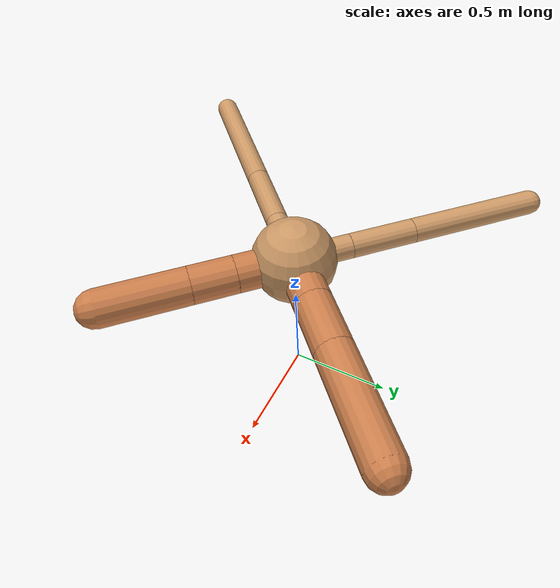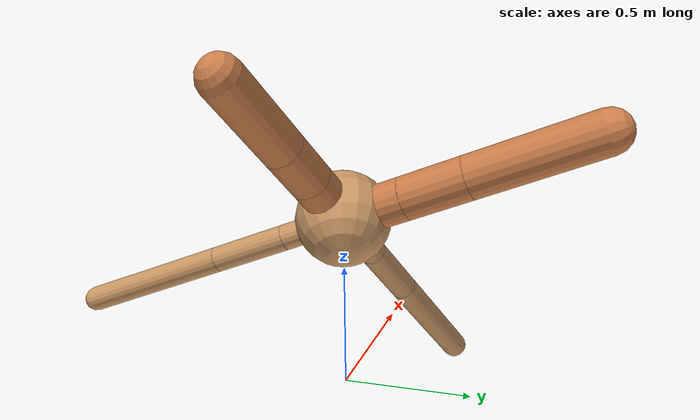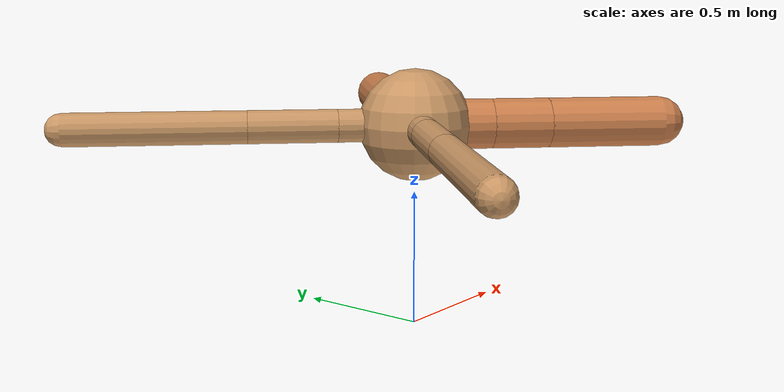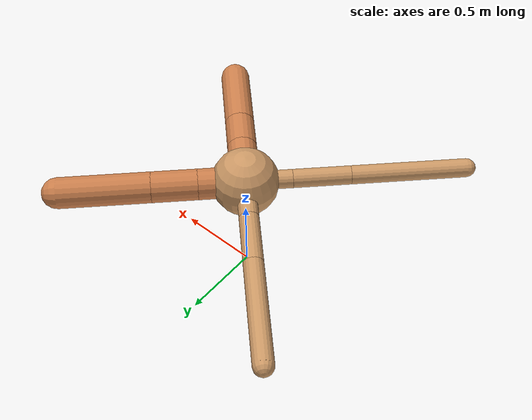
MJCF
<?xml version="1.0" ?>
<mujoco model="ant">

	<compiler angle="degree" coordinate="local" inertiafromgeom="true"/>

	<option integrator="RK4" timestep="0.01"/>

	<custom>

		<numeric data="0.0 0.0 0.55 1.0 0.0 0.0 0.0 0.0 1.0 0.0 -1.0 0.0 -1.0 0.0 1.0" name="init_qpos"/>

	</custom>

	<default>

		<joint armature="1" damping="1" limited="true"/>

		<geom conaffinity="0" condim="3" density="5.0" friction="1.5 0.1 0.1" margin="0.01" rgba="0.8 0.6 0.4 1"/>

	</default>

	<worldbody>

		<body name="torso" pos="0 0 0.75">

			<geom name="torso_geom" pos="0 0 0" size="0.20539846198013204" type="sphere"/>

			<!--joint armature="0" damping="0" limited="false" margin="0.01" name="root" pos="0 0 0" type="free"/-->

			<body name="front_left_leg" pos="0 0 0">

				<geom fromto="0 0 0 0.2 0.2 0" name="aux_1_geom" size="0.0938279303173349" type="capsule" rgba=".8 .5 .3 1"/>

				<body name="aux_1" pos="0.2 0.2 0">

					<joint axis="0 0 1" name="hip_1" pos="0.0 0.0 0.0" range="-40 40" type="hinge"/>

					<geom fromto="0 0 0 0.1961961524567722 0.1961961524567722 0" name="left_leg_geom" size="0.0938279303173349" type="capsule" rgba=".8 .5 .3 1"/>

					<body pos="0.1961961524567722 0.1961961524567722 0" name="front_left_foot">

						<joint axis="-1 1 0" name="ankle_1" pos="0.0 0.0 0.0" range="30 100" type="hinge"/>

						<geom fromto="0 0 0 0.3923923049135444 0.3923923049135444 0" name="left_ankle_geom" size="0.0938279303173349" type="capsule" rgba=".8 .5 .3 1"/>

					</body>

				</body>

			</body>

			<body name="front_right_leg" pos="0 0 0">

				<geom fromto="0 0 0 -0.2 0.2 0" name="aux_2_geom" size="0.06037853630313514" type="capsule"/>

				<body name="aux_2" pos="-0.2 0.2 0">

					<joint axis="0 0 1" name="hip_2" pos="0.0 0.0 0.0" range="-40 40" type="hinge"/>

					<geom fromto="0 0 0 -0.22965506006499387 0.22965506006499387 0" name="right_leg_geom" size="0.06037853630313514" type="capsule"/>

					<body pos="-0.22965506006499387 0.22965506006499387 0" name="front_right_foot">

						<joint axis="1 1 0" name="ankle_2" pos="0.0 0.0 0.0" range="-100 -30" type="hinge"/>

						<geom fromto="0 0 0 -0.45931012012998773 0.45931012012998773 0" name="right_ankle_geom" size="0.06037853630313514" type="capsule"/>

					</body>

				</body>

			</body>

			<body name="left_back_leg" pos="0 0 0">

				<geom fromto="0 0 0 -0.2 -0.2 0" name="aux_3_geom" size="0.0566346341686063" type="capsule"/>

				<body name="aux_3" pos="-0.2 -0.2 0">

					<joint axis="0 0 1" name="hip_3" pos="0.0 0.0 0.0" range="-40 40" type="hinge"/>

					<geom fromto="0 0 0 -0.2488248608549431 -0.2488248608549431 0" name="back_leg_geom" size="0.0566346341686063" type="capsule"/>

					<body pos="-0.2488248608549431 -0.2488248608549431 0" name="left_back_foot">

						<joint axis="-1 1 0" name="ankle_3" pos="0.0 0.0 0.0" range="-100 -30" type="hinge"/>

						<geom fromto="0 0 0 -0.4976497217098862 -0.4976497217098862 0" name="third_ankle_geom" size="0.0566346341686063" type="capsule"/>

					</body>

				</body>

			</body>

			<body name="right_back_leg" pos="0 0 0">

				<geom fromto="0 0 0 0.2 -0.2 0" name="aux_4_geom" size="0.09156697557416328" type="capsule" rgba=".8 .5 .3 1"/>

				<body name="aux_4" pos="0.2 -0.2 0">

					<joint axis="0 0 1" name="hip_4" pos="0.0 0.0 0.0" range="-40 40" type="hinge"/>

					<geom fromto="0 0 0 0.14984704192233764 -0.14984704192233764 0" name="rightback_leg_geom" size="0.09156697557416328" type="capsule" rgba=".8 .5 .3 1"/>

					<body pos="0.14984704192233764 -0.14984704192233764 0" name="right_back_foot">

						<joint axis="1 1 0" name="ankle_4" pos="0.0 0.0 0.0" range="30 100" type="hinge"/>

						<geom fromto="0 0 0 0.2996940838446753 -0.2996940838446753 0" name="fourth_ankle_geom" size="0.09156697557416328" type="capsule" rgba=".8 .5 .3 1"/>

					</body>

				</body>

			</body>

		</body>

	</worldbody>

	<actuator>

		<motor ctrllimited="true" ctrlrange="-1.0 1.0" joint="hip_4" gear="150"/>

		<motor ctrllimited="true" ctrlrange="-1.0 1.0" joint="ankle_4" gear="150"/>

		<motor ctrllimited="true" ctrlrange="-1.0 1.0" joint="hip_1" gear="150"/>

		<motor ctrllimited="true" ctrlrange="-1.0 1.0" joint="ankle_1" gear="150"/>

		<motor ctrllimited="true" ctrlrange="-1.0 1.0" joint="hip_2" gear="150"/>

		<motor ctrllimited="true" ctrlrange="-1.0 1.0" joint="ankle_2" gear="150"/>

		<motor ctrllimited="true" ctrlrange="-1.0 1.0" joint="hip_3" gear="150"/>

		<motor ctrllimited="true" ctrlrange="-1.0 1.0" joint="ankle_3" gear="150"/>

	</actuator>

</mujoco>
